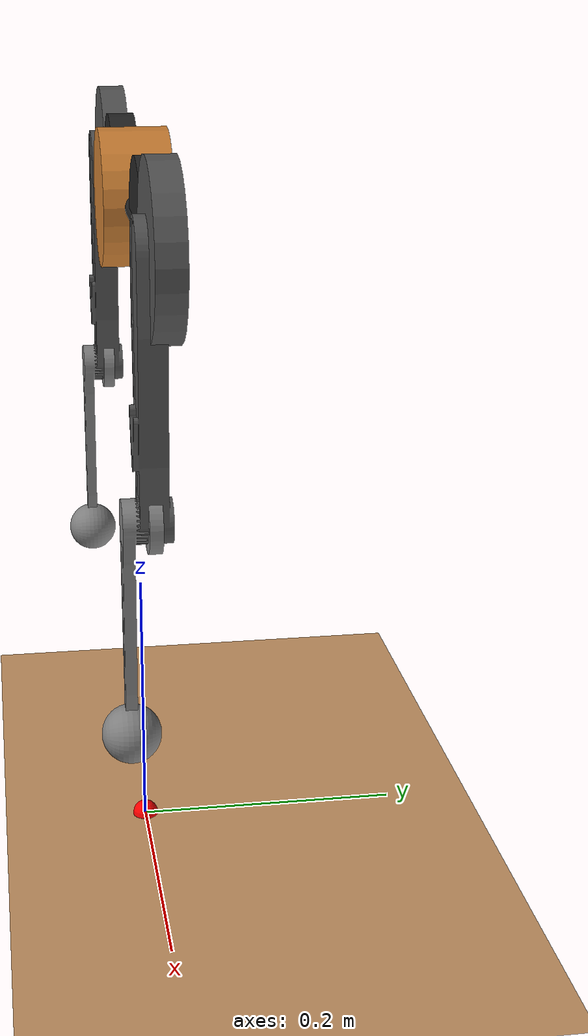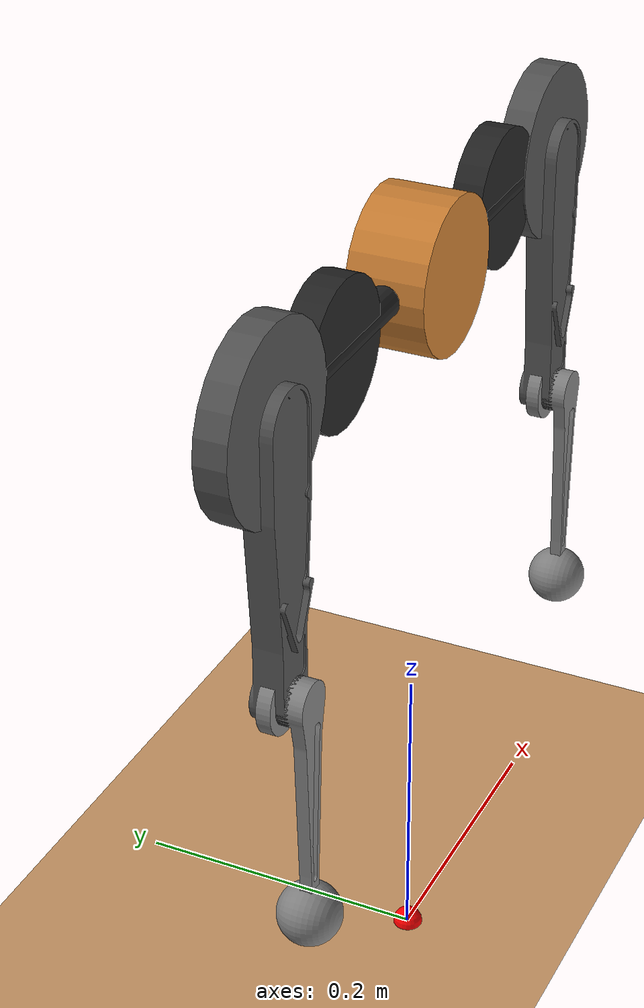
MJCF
<mujoco model="cheetah">
    <compiler angle="radian" coordinate="local" inertiafromgeom="true"/>

    <default>
        <joint armature=".1" damping=".01" limited="true" solimplimit="0 .8 .03" solreflimit=".02 1" stiffness="8"/>
        <geom conaffinity="0" condim="3" contype="1" friction=".4 .1 .1" rgba="0.8 0.6 .4 1" solimp="0.0 0.8 0.01" solref="0.02 1"/>
        <motor ctrllimited="true" ctrlrange="-1 1"/>
    </default>

    <size nstack="300000" nuser_geom="1"/>
    <option gravity="0 0 -9.81" timestep="0.01"/>

    <asset>
        <mesh name="thigh_mesh" file="meshes/thigh.stl" scale="0.001 0.001 0.001"/>
        <mesh name="shin_mesh" file="meshes/shin.stl" scale="0.001 0.001 0.001"/>

        <texture type="skybox" builtin="gradient" rgb1=".3 .5 .7" rgb2="0 0 0" width="32" height="512"/>
        <texture name="body" type="cube" builtin="flat" mark="cross" width="128" height="128" rgb1="0.8 0.6 0.4" rgb2="0.8 0.6 0.4" markrgb="1 1 1" random="0.01"/>
        <material name="body" texture="body" texuniform="true" rgba="0.8 0.6 .4 1"/>
        <texture name="grid" type="2d" builtin="checker" width="512" height="512" rgb1=".1 .2 .3" rgb2=".2 .3 .4"/>
        <material name="grid" texture="grid" texrepeat="4 4" texuniform="true" reflectance=".0"/>
    </asset>

    <worldbody>
        <light name="spotlight" mode="targetbodycom" target="torso" diffuse=".8 .8 .8" specular="0.3 0.3 0.3" pos="0 -6 4" cutoff="30"/>
        <geom conaffinity="1" condim="3" material="grid" name="floor" pos="0 0 0" size="0 0 .05" type="plane"/>
        <site name="test_marker" pos="0 0 0" size="0.01" rgba="1 0 0 1"/>

        <body name="torso" pos="0 0 .5">
            <camera name="track" mode="trackcom" pos="0 -2 0.1" xyaxes="1 0 0 0 0 1"/>
            <joint armature="0" axis="1 0 0" damping="0" limited="false" name="rootx" pos="0 0 0" stiffness="0" type="slide"/>
            <joint armature="0" axis="0 0 1" damping="0" limited="false" name="rootz" pos="0 0 0" stiffness="0" type="slide"/>
            <joint armature="0" axis="0 1 0" damping="0" limited="false" name="rooty" pos="0 0 0" stiffness="0" type="hinge"/>
            <geom quat="0 0 0.7071068 0.7071068" type="cylinder" name="front_torso_center_geom" size="0.05 0.025" pos="0 0 0"  rgba="0.8 0.5 0.2 1" mass="0.507"/>

            <body name="front_torso" pos="0 0 0">
                <joint name="spine" damping="0.1" type="hinge" axis="0 1 0" pos="0 0 0" range="-2 2" stiffness="4"/>
                <geom fromto="0 0 0 .195586 0 0" rgba="0.141 0.141 0.141 1" name="front_torso_geom" size="0.01" type="capsule"/>
                <geom quat="0 0 0.7071068 0.7071068" rgba="0.141 0.141 0.141 1" type="cylinder" size="0.046 0.01" pos="0.119488 0.001 0" friction="1.0 .1 .1" mass="0.672"/>

                <body name="fthigh" pos=".195586 0 0">
                    <joint axis="0 1 0" damping="0.1" name="fthigh" pos="0 0 0" range="-3 3" stiffness="1" type="hinge"/>
                    <geom quat="0 0 0.7071068 0.7071068" rgba="0.329 0.329 0.329 1" name="fthigh_pully_geom" type="cylinder" size="0.0585 0.01" pos="0.01 0 0"/>
                    <geom quat="0 0 0.7071068 0.7071068" rgba="0.329 0.329 0.329 1" name="fthigh_geom" pos="0.01 -0.02 0" type="mesh" mesh="thigh_mesh" friction="1.0 .1 .1"/>

                    <body name="fshin" pos="0.01 -0.02 0">
                        <joint axis="0 1 0" damping="0.1" name="fshin" pos="0 0 -0.175026" range="-2.8 2.8" stiffness="1" type="hinge"/>
                        <geom quat="0 0 0.7071068 0.7071068" name="fshin_geom" pos="0 0 0" rgba="0.51 0.51 0.51 1" type="mesh" mesh="shin_mesh" friction="2.5 .1 .1"/>
                    </body>

                </body>
            </body>

            <body name="back_torso" pos="0 0 0">
                <geom fromto="-.195586 0 0 0 0 0" rgba="0.141 0.141 0.141 1" name="back_torso_geom" size="0.01" type="capsule"/>
                <geom quat="0 0 0.7071068 0.7071068" rgba="0.141 0.141 0.141 1" type="cylinder" size="0.046 0.01" pos="-0.119488 0.001 0" mass="0.672"/>

                <body name="bthigh" pos="-.195586 0 0">
                    <joint axis="0 1 0" damping="0.1" name="bthigh" pos="0 0 0" range="-3 3" stiffness="1" type="hinge"/>
                    <geom quat="0 0 0.7071068 0.7071068" rgba="0.329 0.329 0.329 1" name="bthigh_pully_geom" type="cylinder" size="0.0585 0.01" pos="-0.01 0 0" />
                    <geom quat="0 0 0.7071068 0.7071068" rgba="0.329 0.329 0.329 1" name="bthigh_geom" pos="-0.01 -0.02 0" type="mesh" mesh="thigh_mesh" friction="1.0 .1 .1"/>

                    <body name="bshin" pos="-0.01 -0.02 0">
                        <joint axis="0 1 0" damping="0.1" name="bshin" pos="0 0 -0.175026" range="-2.8 2.8" stiffness="1" type="hinge"/>
                        <geom quat="0 0 0.7071068 0.7071068" name="bshin_geom" pos="0 0 0" rgba="0.51 0.51 0.51 1" type="mesh" mesh="shin_mesh" friction="2.5 .1 .1"/>
                    </body>

                </body>
            </body>

        </body>
    </worldbody>

    <actuator>
        <position joint="spine" name="spine_position" ctrlrange="-2 2" kp="100" forcerange="-16 16"/>
        <position joint="bthigh" name="bthigh_position" ctrlrange="-3 3" kp="100" forcerange="-16 16"/>
        <position joint="bshin" name="bshin_position" ctrlrange="-2.8 2.8" kp="100" forcerange="-16 16"/>
        <position joint="fthigh" name="fthigh_position" ctrlrange="-3 3" kp="100" forcerange="-16 16"/>
        <position joint="fshin" name="fshin_position" ctrlrange="-2.8 2.8" kp="100" forcerange="-16 16"/>
    </actuator>

</mujoco>
